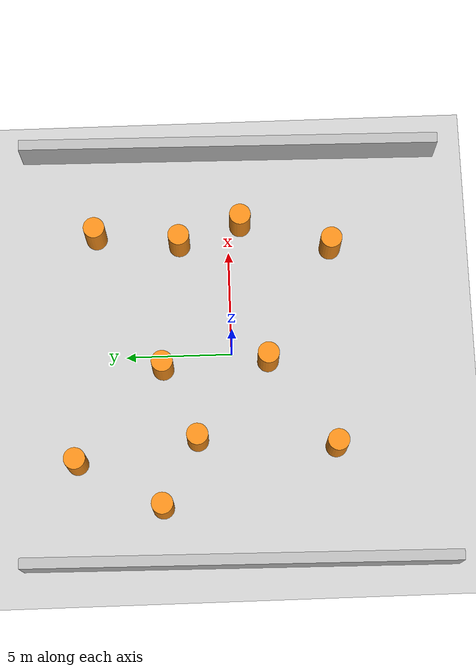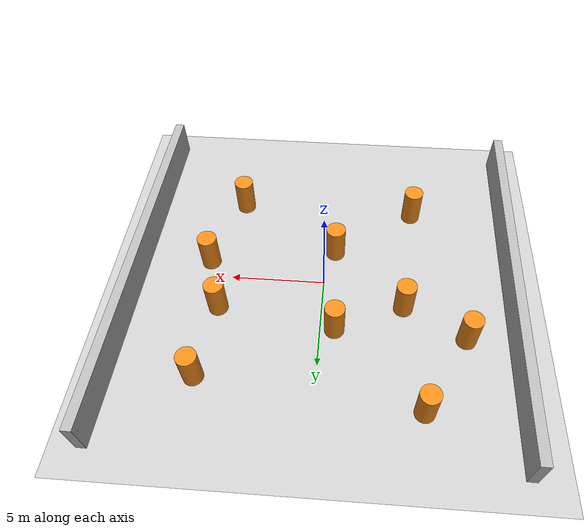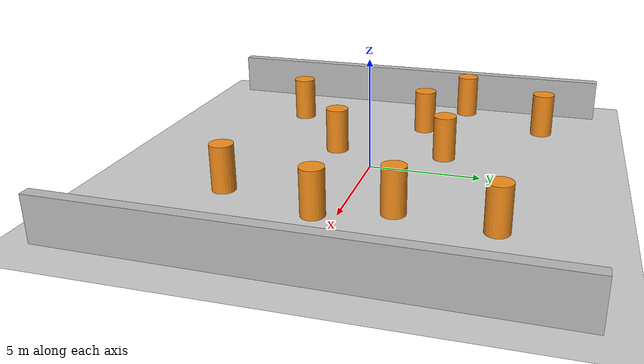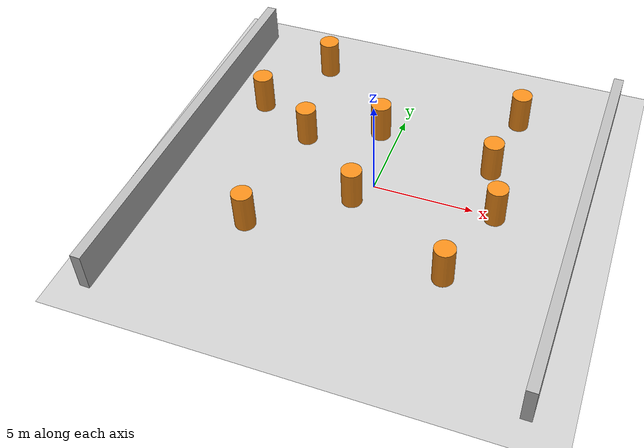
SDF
<sdf version="1.7">
 <world name="obstacle_avoidance_world">
  <gravity>0 0 -9.81</gravity>
  <model name="ground_plane">
   <static>1</static>
   <link name="link">
    <collision name="collision">
     <geometry><plane><normal>0 0 1</normal><size>100 100</size></plane></geometry>
     <surface>
      <contact><collide_bitmask>65535</collide_bitmask></contact>
      <friction><ode><mu>100</mu><mu2>50</mu2></ode></friction>
     </surface>
    </collision>
    <visual name="visual">
     <cast_shadows>0</cast_shadows>
     <geometry><plane><normal>0 0 1</normal><size>100 100</size></plane></geometry>
     <material>
      <script><uri>file://media/materials/scripts/gazebo.material</uri><name>Gazebo/Grey</name></script>
     </material>
    </visual>
   </link>
  </model>
  <light name="sun" type="directional">
   <pose>0 0 10 0 -0 0</pose>
   <diffuse>0.8 0.8 0.8 1</diffuse>
   <specular>0.2 0.2 0.2 1</specular>
   <attenuation>
    <range>1000</range>
    <constant>0.9</constant>
    <linear>0.01</linear>
    <quadratic>0.001</quadratic>
   </attenuation>
   <direction>-0.5 0.1 -0.9</direction>
   <spot><inner_angle>0</inner_angle><outer_angle>0</outer_angle><falloff>0</falloff></spot>
  </light>
  <model name="wall1">
   <pose>2e-06 2e-05 0 0 0 -1.58591</pose>
   <static>1</static>
   <link name="link">
    <pose>0 10 1 0 -0 0</pose>
    <collision name="collision"><geometry><box><size>20 0.5 2</size></box></geometry></collision>
    <visual name="visual">
     <geometry><box><size>20 0.5 2</size></box></geometry>
     <material>
      <script><uri>file://media/materials/scripts/gazebo.material</uri><name>Gazebo/Brick</name></script>
     </material>
    </visual>
   </link>
  </model>
  <model name="cylinder0">
   <pose>0.271248 -2.67689 1 0 -0 0</pose>
   <static>1</static>
   <link name="link">
    <pose>5 5 0.5 0 -0 0</pose>
    <collision name="collision">
     <geometry><cylinder><radius>0.5</radius><length>2</length></cylinder></geometry>
    </collision>
    <visual name="visual">
     <geometry><cylinder><radius>0.5</radius><length>2</length></cylinder></geometry>
     <material>
      <script><uri>file://media/materials/scripts/gazebo.material</uri><name>Gazebo/Orange</name></script>
     </material>
    </visual>
   </link>
  </model>
  <model name="cylinder1">
   <pose>-0.106119 -9.82448 1 0 -0 0</pose>
   <static>1</static>
   <link name="link">
    <pose>5 5 0.5 0 -0 0</pose>
    <collision name="collision">
     <geometry><cylinder><radius>0.5</radius><length>2</length></cylinder></geometry>
    </collision>
    <visual name="visual">
     <geometry><cylinder><radius>0.5</radius><length>2</length></cylinder></geometry>
     <material>
      <script><uri>file://media/materials/scripts/gazebo.material</uri><name>Gazebo/Orange</name></script>
     </material>
    </visual>
   </link>
  </model>
  <model name="cylinder2">
   <pose>-9.66302 -9.68488 1 0 -0 0</pose>
   <static>1</static>
   <link name="link">
    <pose>5 5 0.5 0 -0 0</pose>
    <collision name="collision">
     <geometry><cylinder><radius>0.5</radius><length>2</length></cylinder></geometry>
    </collision>
    <visual name="visual">
     <geometry><cylinder><radius>0.5</radius><length>2</length></cylinder></geometry>
     <material>
      <script><uri>file://media/materials/scripts/gazebo.material</uri><name>Gazebo/Orange</name></script>
     </material>
    </visual>
   </link>
  </model>
  <model name="cylinder3">
   <pose>-5.73994 -1.75333 1 0 -0 0</pose>
   <static>1</static>
   <link name="link">
    <pose>5 5 0.5 0 -0 0</pose>
    <collision name="collision">
     <geometry><cylinder><radius>0.5</radius><length>2</length></cylinder></geometry>
    </collision>
    <visual name="visual">
     <geometry><cylinder><radius>0.5</radius><length>2</length></cylinder></geometry>
     <material>
      <script><uri>file://media/materials/scripts/gazebo.material</uri><name>Gazebo/Orange</name></script>
     </material>
    </visual>
   </link>
  </model>
  <model name="cylinder4">
   <pose>-12.2651 -1.60847 1 0 -0 0</pose>
   <static>1</static>
   <link name="link">
    <pose>5 5 0.5 0 -0 0</pose>
    <collision name="collision">
     <geometry><cylinder><radius>0.5</radius><length>2</length></cylinder></geometry>
    </collision>
    <visual name="visual">
     <geometry><cylinder><radius>0.5</radius><length>2</length></cylinder></geometry>
     <material>
      <script><uri>file://media/materials/scripts/gazebo.material</uri><name>Gazebo/Orange</name></script>
     </material>
    </visual>
   </link>
  </model>
  <model name="cylinder5">
   <pose>1.17264 -5.58979 1 0 -0 0</pose>
   <static>1</static>
   <link name="link">
    <pose>5 5 0.5 0 -0 0</pose>
    <collision name="collision">
     <geometry><cylinder><radius>0.5</radius><length>2</length></cylinder></geometry>
    </collision>
    <visual name="visual">
     <geometry><cylinder><radius>0.5</radius><length>2</length></cylinder></geometry>
     <material>
      <script><uri>file://media/materials/scripts/gazebo.material</uri><name>Gazebo/Orange</name></script>
     </material>
    </visual>
   </link>
  </model>
  <model name="cylinder6">
   <pose>-9.1808 -3.27682 1 0 -0 0</pose>
   <static>1</static>
   <link name="link">
    <pose>5 5 0.5 0 -0 0</pose>
    <collision name="collision">
     <geometry><cylinder><radius>0.5</radius><length>2</length></cylinder></geometry>
    </collision>
    <visual name="visual">
     <geometry><cylinder><radius>0.5</radius><length>2</length></cylinder></geometry>
     <material>
      <script><uri>file://media/materials/scripts/gazebo.material</uri><name>Gazebo/Orange</name></script>
     </material>
    </visual>
   </link>
  </model>
  <model name="cylinder7">
   <pose>-10.1011 2.30586 1 0 -0 0</pose>
   <static>1</static>
   <link name="link">
    <pose>5 5 0.5 0 -0 0</pose>
    <collision name="collision">
     <geometry><cylinder><radius>0.5</radius><length>2</length></cylinder></geometry>
    </collision>
    <visual name="visual">
     <geometry><cylinder><radius>0.5</radius><length>2</length></cylinder></geometry>
     <material>
      <script><uri>file://media/materials/scripts/gazebo.material</uri><name>Gazebo/Orange</name></script>
     </material>
    </visual>
   </link>
  </model>
  <model name="cylinder8">
   <pose>0.754888 1.26874 1 0 -0 0</pose>
   <static>1</static>
   <link name="link">
    <pose>5 5 0.5 0 -0 0</pose>
    <collision name="collision">
     <geometry><cylinder><radius>0.5</radius><length>2</length></cylinder></geometry>
    </collision>
    <visual name="visual">
     <geometry><cylinder><radius>0.5</radius><length>2</length></cylinder></geometry>
     <material>
      <script><uri>file://media/materials/scripts/gazebo.material</uri><name>Gazebo/Orange</name></script>
     </material>
    </visual>
   </link>
  </model>
  <model name="cylinder9">
   <pose>-5.51142 -6.67122 1 0 -0 0</pose>
   <static>1</static>
   <link name="link">
    <pose>5 5 0.5 0 -0 0</pose>
    <collision name="collision">
     <geometry><cylinder><radius>0.5</radius><length>2</length></cylinder></geometry>
    </collision>
    <visual name="visual">
     <geometry><cylinder><radius>0.5</radius><length>2</length></cylinder></geometry>
     <material>
      <script><uri>file://media/materials/scripts/gazebo.material</uri><name>Gazebo/Orange</name></script>
     </material>
    </visual>
   </link>
  </model>
  <magnetic_field>6e-06 2.3e-05 -4.2e-05</magnetic_field>
  <atmosphere type="adiabatic"/>
  <physics type="ode">
   <max_step_size>0.001</max_step_size>
   <real_time_factor>1</real_time_factor>
   <real_time_update_rate>1000</real_time_update_rate>
  </physics>
  <scene><ambient>0.4 0.4 0.4 1</ambient><background>0.7 0.7 0.7 1</background><shadows>1</shadows></scene>
  <spherical_coordinates>
   <surface_model>EARTH_WGS84</surface_model>
   <latitude_deg>0</latitude_deg>
   <longitude_deg>0</longitude_deg>
   <elevation>0</elevation>
   <heading_deg>0</heading_deg>
  </spherical_coordinates>
  <model name="wall1_clone">
   <static>1</static>
   <link name="link">
    <pose>0 10 1 0 -0 0</pose>
    <collision name="collision"><geometry><box><size>20 0.5 2</size></box></geometry></collision>
    <visual name="visual">
     <geometry><box><size>20 0.5 2</size></box></geometry>
     <material>
      <script><uri>file://media/materials/scripts/gazebo.material</uri><name>Gazebo/Brick</name></script>
     </material>
    </visual>
   </link>
   <pose>-19.8331 0.050126 0 0 0 -1.58591</pose>
  </model>
 </world>
</sdf>
